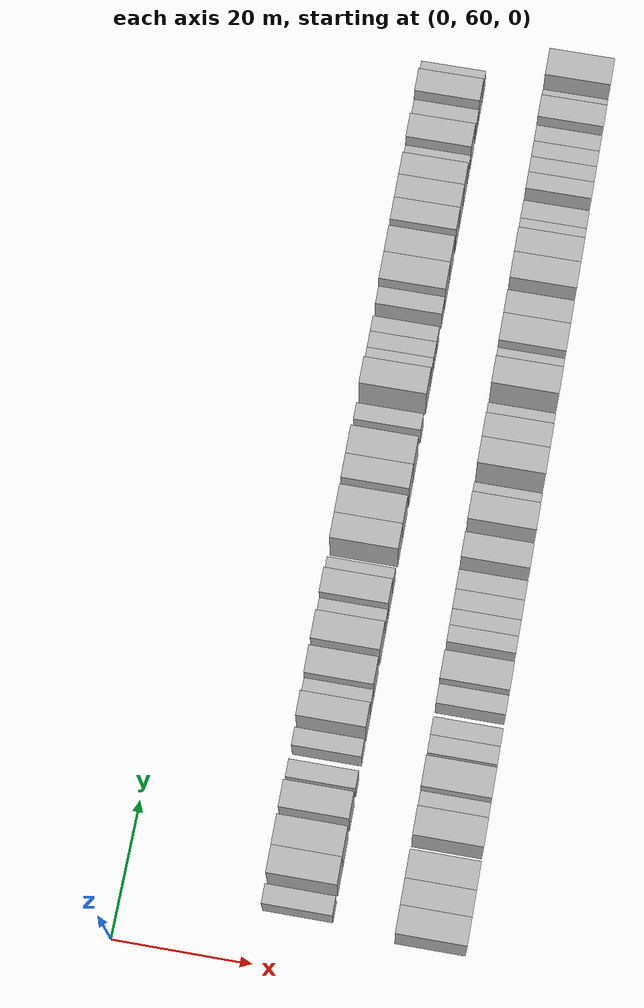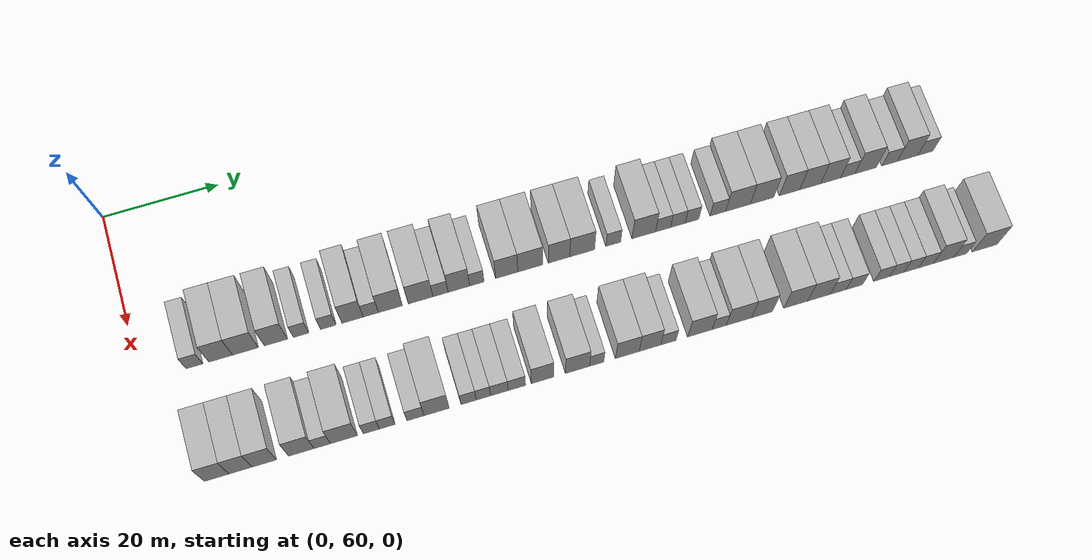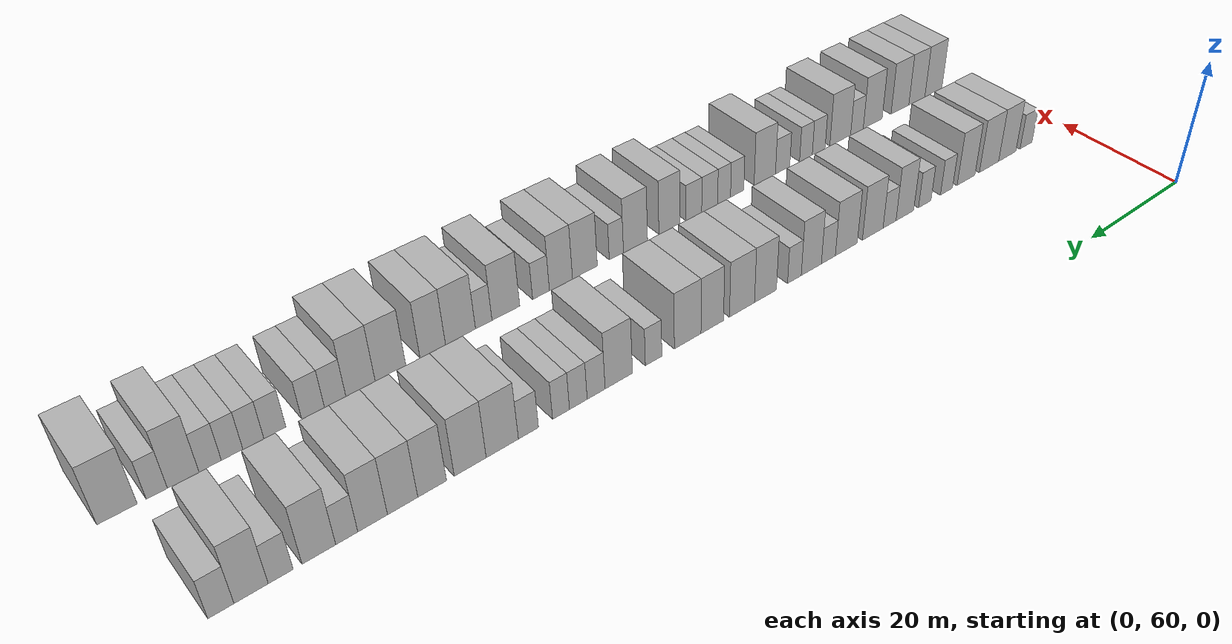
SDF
<sdf version="1.6">
 <world name="default">
  <model name="building_66">
   <static>1</static>
   <pose>25.0000 69.0635 0 0.000000 0.000000 0.000000</pose>
   <link name="link">
    <pose>0 0 3.00 0 0 0</pose>
    <collision name="collision"><geometry><box><size>10.0000 2.8092 6.0000</size></box></geometry></collision>
    <visual name="visual">
     <cast_shadows>0</cast_shadows>
     <geometry><box><size>10.0000 2.8092 6.0000</size></box></geometry>
     <material>
      <script>
       <uri>model://HANNAS_wall/materials/scripts</uri>
       <uri>model://HANNAS_wall/materials/textures</uri>
       <name>vrc/HANNAS_wall</name>
      </script>
     </material>
    </visual>
   </link>
  </model>
  <model name="building_67">
   <static>1</static>
   <pose>25.0000 73.4568 0 0.000000 0.000000 0.000000</pose>
   <link name="link">
    <pose>0 0 4.50 0 0 0</pose>
    <collision name="collision"><geometry><box><size>10.0000 3.9774 9.0000</size></box></geometry></collision>
    <visual name="visual">
     <cast_shadows>0</cast_shadows>
     <geometry><box><size>10.0000 3.9774 9.0000</size></box></geometry>
     <material>
      <script>
       <uri>model://HANNAS_wall/materials/scripts</uri>
       <uri>model://HANNAS_wall/materials/textures</uri>
       <name>vrc/HANNAS_wall</name>
      </script>
     </material>
    </visual>
   </link>
  </model>
  <model name="building_68">
   <static>1</static>
   <pose>25.0000 77.6200 0 0.000000 0.000000 0.000000</pose>
   <link name="link">
    <pose>0 0 4.50 0 0 0</pose>
    <collision name="collision"><geometry><box><size>10.0000 4.3490 9.0000</size></box></geometry></collision>
    <visual name="visual">
     <cast_shadows>0</cast_shadows>
     <geometry><box><size>10.0000 4.3490 9.0000</size></box></geometry>
     <material>
      <script>
       <uri>model://HANNAS_wall/materials/scripts</uri>
       <uri>model://HANNAS_wall/materials/textures</uri>
       <name>vrc/HANNAS_wall</name>
      </script>
     </material>
    </visual>
   </link>
  </model>
  <model name="building_69">
   <static>1</static>
   <pose>25.0000 82.7580 0 0.000000 0.000000 0.000000</pose>
   <link name="link">
    <pose>0 0 4.50 0 0 0</pose>
    <collision name="collision"><geometry><box><size>10.0000 3.9269 9.0000</size></box></geometry></collision>
    <visual name="visual">
     <cast_shadows>0</cast_shadows>
     <geometry><box><size>10.0000 3.9269 9.0000</size></box></geometry>
     <material>
      <script>
       <uri>model://HANNAS_wall/materials/scripts</uri>
       <uri>model://HANNAS_wall/materials/textures</uri>
       <name>vrc/HANNAS_wall</name>
      </script>
     </material>
    </visual>
   </link>
  </model>
  <model name="building_70">
   <static>1</static>
   <pose>25.0000 87.0237 0 0.000000 0.000000 0.000000</pose>
   <link name="link">
    <pose>0 0 3.00 0 0 0</pose>
    <collision name="collision"><geometry><box><size>10.0000 2.6046 6.0000</size></box></geometry></collision>
    <visual name="visual">
     <cast_shadows>0</cast_shadows>
     <geometry><box><size>10.0000 2.6046 6.0000</size></box></geometry>
     <material>
      <script>
       <uri>model://HANNAS_wall/materials/scripts</uri>
       <uri>model://HANNAS_wall/materials/textures</uri>
       <name>vrc/HANNAS_wall</name>
      </script>
     </material>
    </visual>
   </link>
  </model>
  <model name="building_71">
   <static>1</static>
   <pose>25.0000 91.6442 0 0.000000 0.000000 0.000000</pose>
   <link name="link">
    <pose>0 0 3.00 0 0 0</pose>
    <collision name="collision"><geometry><box><size>10.0000 2.6363 6.0000</size></box></geometry></collision>
    <visual name="visual">
     <cast_shadows>0</cast_shadows>
     <geometry><box><size>10.0000 2.6363 6.0000</size></box></geometry>
     <material>
      <script>
       <uri>model://HANNAS_wall/materials/scripts</uri>
       <uri>model://HANNAS_wall/materials/textures</uri>
       <name>vrc/HANNAS_wall</name>
      </script>
     </material>
    </visual>
   </link>
  </model>
  <model name="building_72">
   <static>1</static>
   <pose>25.0000 95.7803 0 0.000000 0.000000 0.000000</pose>
   <link name="link">
    <pose>0 0 4.50 0 0 0</pose>
    <collision name="collision"><geometry><box><size>10.0000 3.6359 9.0000</size></box></geometry></collision>
    <visual name="visual">
     <cast_shadows>0</cast_shadows>
     <geometry><box><size>10.0000 3.6359 9.0000</size></box></geometry>
     <material>
      <script>
       <uri>model://HANNAS_wall/materials/scripts</uri>
       <uri>model://HANNAS_wall/materials/textures</uri>
       <name>vrc/HANNAS_wall</name>
      </script>
     </material>
    </visual>
   </link>
  </model>
  <model name="building_73">
   <static>1</static>
   <pose>25.0000 98.9054 0 0.000000 0.000000 0.000000</pose>
   <link name="link">
    <pose>0 0 3.00 0 0 0</pose>
    <collision name="collision"><geometry><box><size>10.0000 2.6143 6.0000</size></box></geometry></collision>
    <visual name="visual">
     <cast_shadows>0</cast_shadows>
     <geometry><box><size>10.0000 2.6143 6.0000</size></box></geometry>
     <material>
      <script>
       <uri>model://HANNAS_wall/materials/scripts</uri>
       <uri>model://HANNAS_wall/materials/textures</uri>
       <name>vrc/HANNAS_wall</name>
      </script>
     </material>
    </visual>
   </link>
  </model>
  <model name="building_74">
   <static>1</static>
   <pose>25.0000 102.2557 0 0.000000 0.000000 0.000000</pose>
   <link name="link">
    <pose>0 0 4.50 0 0 0</pose>
    <collision name="collision"><geometry><box><size>10.0000 4.0864 9.0000</size></box></geometry></collision>
    <visual name="visual">
     <cast_shadows>0</cast_shadows>
     <geometry><box><size>10.0000 4.0864 9.0000</size></box></geometry>
     <material>
      <script>
       <uri>model://HANNAS_wall/materials/scripts</uri>
       <uri>model://HANNAS_wall/materials/textures</uri>
       <name>vrc/HANNAS_wall</name>
      </script>
     </material>
    </visual>
   </link>
  </model>
  <model name="building_75">
   <static>1</static>
   <pose>25.0000 107.4136 0 0.000000 0.000000 0.000000</pose>
   <link name="link">
    <pose>0 0 4.50 0 0 0</pose>
    <collision name="collision"><geometry><box><size>10.0000 4.2293 9.0000</size></box></geometry></collision>
    <visual name="visual">
     <cast_shadows>0</cast_shadows>
     <geometry><box><size>10.0000 4.2293 9.0000</size></box></geometry>
     <material>
      <script>
       <uri>model://HANNAS_wall/materials/scripts</uri>
       <uri>model://HANNAS_wall/materials/textures</uri>
       <name>vrc/HANNAS_wall</name>
      </script>
     </material>
    </visual>
   </link>
  </model>
  <model name="building_76">
   <static>1</static>
   <pose>25.0000 110.8473 0 0.000000 0.000000 0.000000</pose>
   <link name="link">
    <pose>0 0 3.00 0 0 0</pose>
    <collision name="collision"><geometry><box><size>10.0000 2.6381 6.0000</size></box></geometry></collision>
    <visual name="visual">
     <cast_shadows>0</cast_shadows>
     <geometry><box><size>10.0000 2.6381 6.0000</size></box></geometry>
     <material>
      <script>
       <uri>model://HANNAS_wall/materials/scripts</uri>
       <uri>model://HANNAS_wall/materials/textures</uri>
       <name>vrc/HANNAS_wall</name>
      </script>
     </material>
    </visual>
   </link>
  </model>
  <model name="building_77">
   <static>1</static>
   <pose>25.0000 114.0318 0 0.000000 0.000000 0.000000</pose>
   <link name="link">
    <pose>0 0 4.50 0 0 0</pose>
    <collision name="collision"><geometry><box><size>10.0000 3.7310 9.0000</size></box></geometry></collision>
    <visual name="visual">
     <cast_shadows>0</cast_shadows>
     <geometry><box><size>10.0000 3.7310 9.0000</size></box></geometry>
     <material>
      <script>
       <uri>model://HANNAS_wall/materials/scripts</uri>
       <uri>model://HANNAS_wall/materials/textures</uri>
       <name>vrc/HANNAS_wall</name>
      </script>
     </material>
    </visual>
   </link>
  </model>
  <model name="building_78">
   <static>1</static>
   <pose>25.0000 117.1428 0 0.000000 0.000000 0.000000</pose>
   <link name="link">
    <pose>0 0 3.00 0 0 0</pose>
    <collision name="collision"><geometry><box><size>10.0000 2.4910 6.0000</size></box></geometry></collision>
    <visual name="visual">
     <cast_shadows>0</cast_shadows>
     <geometry><box><size>10.0000 2.4910 6.0000</size></box></geometry>
     <material>
      <script>
       <uri>model://HANNAS_wall/materials/scripts</uri>
       <uri>model://HANNAS_wall/materials/textures</uri>
       <name>vrc/HANNAS_wall</name>
      </script>
     </material>
    </visual>
   </link>
  </model>
  <model name="building_79">
   <static>1</static>
   <pose>25.0000 122.3244 0 0.000000 0.000000 0.000000</pose>
   <link name="link">
    <pose>0 0 4.50 0 0 0</pose>
    <collision name="collision"><geometry><box><size>10.0000 3.8722 9.0000</size></box></geometry></collision>
    <visual name="visual">
     <cast_shadows>0</cast_shadows>
     <geometry><box><size>10.0000 3.8722 9.0000</size></box></geometry>
     <material>
      <script>
       <uri>model://HANNAS_wall/materials/scripts</uri>
       <uri>model://HANNAS_wall/materials/textures</uri>
       <name>vrc/HANNAS_wall</name>
      </script>
     </material>
    </visual>
   </link>
  </model>
  <model name="building_80">
   <static>1</static>
   <pose>25.0000 126.4170 0 0.000000 0.000000 0.000000</pose>
   <link name="link">
    <pose>0 0 4.50 0 0 0</pose>
    <collision name="collision"><geometry><box><size>10.0000 4.3130 9.0000</size></box></geometry></collision>
    <visual name="visual">
     <cast_shadows>0</cast_shadows>
     <geometry><box><size>10.0000 4.3130 9.0000</size></box></geometry>
     <material>
      <script>
       <uri>model://HANNAS_wall/materials/scripts</uri>
       <uri>model://HANNAS_wall/materials/textures</uri>
       <name>vrc/HANNAS_wall</name>
      </script>
     </material>
    </visual>
   </link>
  </model>
  <model name="building_81">
   <static>1</static>
   <pose>25.0000 131.4586 0 0.000000 0.000000 0.000000</pose>
   <link name="link">
    <pose>0 0 4.50 0 0 0</pose>
    <collision name="collision"><geometry><box><size>10.0000 3.7700 9.0000</size></box></geometry></collision>
    <visual name="visual">
     <cast_shadows>0</cast_shadows>
     <geometry><box><size>10.0000 3.7700 9.0000</size></box></geometry>
     <material>
      <script>
       <uri>model://HANNAS_wall/materials/scripts</uri>
       <uri>model://HANNAS_wall/materials/textures</uri>
       <name>vrc/HANNAS_wall</name>
      </script>
     </material>
    </visual>
   </link>
  </model>
  <model name="building_82">
   <static>1</static>
   <pose>25.0000 135.5124 0 0.000000 0.000000 0.000000</pose>
   <link name="link">
    <pose>0 0 4.50 0 0 0</pose>
    <collision name="collision"><geometry><box><size>10.0000 4.3376 9.0000</size></box></geometry></collision>
    <visual name="visual">
     <cast_shadows>0</cast_shadows>
     <geometry><box><size>10.0000 4.3376 9.0000</size></box></geometry>
     <material>
      <script>
       <uri>model://HANNAS_wall/materials/scripts</uri>
       <uri>model://HANNAS_wall/materials/textures</uri>
       <name>vrc/HANNAS_wall</name>
      </script>
     </material>
    </visual>
   </link>
  </model>
  <model name="building_83">
   <static>1</static>
   <pose>25.0000 140.9813 0 0.000000 0.000000 0.000000</pose>
   <link name="link">
    <pose>0 0 3.00 0 0 0</pose>
    <collision name="collision"><geometry><box><size>10.0000 2.6002 6.0000</size></box></geometry></collision>
    <visual name="visual">
     <cast_shadows>0</cast_shadows>
     <geometry><box><size>10.0000 2.6002 6.0000</size></box></geometry>
     <material>
      <script>
       <uri>model://HANNAS_wall/materials/scripts</uri>
       <uri>model://HANNAS_wall/materials/textures</uri>
       <name>vrc/HANNAS_wall</name>
      </script>
     </material>
    </visual>
   </link>
  </model>
  <model name="building_84">
   <static>1</static>
   <pose>25.0000 146.3655 0 0.000000 0.000000 0.000000</pose>
   <link name="link">
    <pose>0 0 4.50 0 0 0</pose>
    <collision name="collision"><geometry><box><size>10.0000 4.1683 9.0000</size></box></geometry></collision>
    <visual name="visual">
     <cast_shadows>0</cast_shadows>
     <geometry><box><size>10.0000 4.1683 9.0000</size></box></geometry>
     <material>
      <script>
       <uri>model://HANNAS_wall/materials/scripts</uri>
       <uri>model://HANNAS_wall/materials/textures</uri>
       <name>vrc/HANNAS_wall</name>
      </script>
     </material>
    </visual>
   </link>
  </model>
  <model name="building_85">
   <static>1</static>
   <pose>25.0000 149.7873 0 0.000000 0.000000 0.000000</pose>
   <link name="link">
    <pose>0 0 3.00 0 0 0</pose>
    <collision name="collision"><geometry><box><size>10.0000 2.6753 6.0000</size></box></geometry></collision>
    <visual name="visual">
     <cast_shadows>0</cast_shadows>
     <geometry><box><size>10.0000 2.6753 6.0000</size></box></geometry>
     <material>
      <script>
       <uri>model://HANNAS_wall/materials/scripts</uri>
       <uri>model://HANNAS_wall/materials/textures</uri>
       <name>vrc/HANNAS_wall</name>
      </script>
     </material>
    </visual>
   </link>
  </model>
  <model name="building_86">
   <static>1</static>
   <pose>25.0000 152.4203 0 0.000000 0.000000 0.000000</pose>
   <link name="link">
    <pose>0 0 3.00 0 0 0</pose>
    <collision name="collision"><geometry><box><size>10.0000 2.5905 6.0000</size></box></geometry></collision>
    <visual name="visual">
     <cast_shadows>0</cast_shadows>
     <geometry><box><size>10.0000 2.5905 6.0000</size></box></geometry>
     <material>
      <script>
       <uri>model://HANNAS_wall/materials/scripts</uri>
       <uri>model://HANNAS_wall/materials/textures</uri>
       <name>vrc/HANNAS_wall</name>
      </script>
     </material>
    </visual>
   </link>
  </model>
  <model name="building_87">
   <static>1</static>
   <pose>25.0000 154.9330 0 0.000000 0.000000 0.000000</pose>
   <link name="link">
    <pose>0 0 3.00 0 0 0</pose>
    <collision name="collision"><geometry><box><size>10.0000 2.4350 6.0000</size></box></geometry></collision>
    <visual name="visual">
     <cast_shadows>0</cast_shadows>
     <geometry><box><size>10.0000 2.4350 6.0000</size></box></geometry>
     <material>
      <script>
       <uri>model://HANNAS_wall/materials/scripts</uri>
       <uri>model://HANNAS_wall/materials/textures</uri>
       <name>vrc/HANNAS_wall</name>
      </script>
     </material>
    </visual>
   </link>
  </model>
  <model name="building_88">
   <static>1</static>
   <pose>25.0000 159.5547 0 0.000000 0.000000 0.000000</pose>
   <link name="link">
    <pose>0 0 3.00 0 0 0</pose>
    <collision name="collision"><geometry><box><size>10.0000 2.8083 6.0000</size></box></geometry></collision>
    <visual name="visual">
     <cast_shadows>0</cast_shadows>
     <geometry><box><size>10.0000 2.8083 6.0000</size></box></geometry>
     <material>
      <script>
       <uri>model://HANNAS_wall/materials/scripts</uri>
       <uri>model://HANNAS_wall/materials/textures</uri>
       <name>vrc/HANNAS_wall</name>
      </script>
     </material>
    </visual>
   </link>
  </model>
  <model name="building_89">
   <static>1</static>
   <pose>25.0000 163.1570 0 0.000000 0.000000 0.000000</pose>
   <link name="link">
    <pose>0 0 4.50 0 0 0</pose>
    <collision name="collision"><geometry><box><size>10.0000 4.3962 9.0000</size></box></geometry></collision>
    <visual name="visual">
     <cast_shadows>0</cast_shadows>
     <geometry><box><size>10.0000 4.3962 9.0000</size></box></geometry>
     <material>
      <script>
       <uri>model://HANNAS_wall/materials/scripts</uri>
       <uri>model://HANNAS_wall/materials/textures</uri>
       <name>vrc/HANNAS_wall</name>
      </script>
     </material>
    </visual>
   </link>
  </model>
  <model name="building_90">
   <static>1</static>
   <pose>25.0000 167.4752 0 0.000000 0.000000 0.000000</pose>
   <link name="link">
    <pose>0 0 4.50 0 0 0</pose>
    <collision name="collision"><geometry><box><size>10.0000 4.2403 9.0000</size></box></geometry></collision>
    <visual name="visual">
     <cast_shadows>0</cast_shadows>
     <geometry><box><size>10.0000 4.2403 9.0000</size></box></geometry>
     <material>
      <script>
       <uri>model://HANNAS_wall/materials/scripts</uri>
       <uri>model://HANNAS_wall/materials/textures</uri>
       <name>vrc/HANNAS_wall</name>
      </script>
     </material>
    </visual>
   </link>
  </model>
  <model name="building_91">
   <static>1</static>
   <pose>25.0000 172.4329 0 0.000000 0.000000 0.000000</pose>
   <link name="link">
    <pose>0 0 4.50 0 0 0</pose>
    <collision name="collision"><geometry><box><size>10.0000 3.6749 9.0000</size></box></geometry></collision>
    <visual name="visual">
     <cast_shadows>0</cast_shadows>
     <geometry><box><size>10.0000 3.6749 9.0000</size></box></geometry>
     <material>
      <script>
       <uri>model://HANNAS_wall/materials/scripts</uri>
       <uri>model://HANNAS_wall/materials/textures</uri>
       <name>vrc/HANNAS_wall</name>
      </script>
     </material>
    </visual>
   </link>
  </model>
  <model name="building_92">
   <static>1</static>
   <pose>25.0000 176.1616 0 0.000000 0.000000 0.000000</pose>
   <link name="link">
    <pose>0 0 4.50 0 0 0</pose>
    <collision name="collision"><geometry><box><size>10.0000 3.7825 9.0000</size></box></geometry></collision>
    <visual name="visual">
     <cast_shadows>0</cast_shadows>
     <geometry><box><size>10.0000 3.7825 9.0000</size></box></geometry>
     <material>
      <script>
       <uri>model://HANNAS_wall/materials/scripts</uri>
       <uri>model://HANNAS_wall/materials/textures</uri>
       <name>vrc/HANNAS_wall</name>
      </script>
     </material>
    </visual>
   </link>
  </model>
  <model name="building_93">
   <static>1</static>
   <pose>25.0000 179.8567 0 0.000000 0.000000 0.000000</pose>
   <link name="link">
    <pose>0 0 4.50 0 0 0</pose>
    <collision name="collision"><geometry><box><size>10.0000 3.6077 9.0000</size></box></geometry></collision>
    <visual name="visual">
     <cast_shadows>0</cast_shadows>
     <geometry><box><size>10.0000 3.6077 9.0000</size></box></geometry>
     <material>
      <script>
       <uri>model://HANNAS_wall/materials/scripts</uri>
       <uri>model://HANNAS_wall/materials/textures</uri>
       <name>vrc/HANNAS_wall</name>
      </script>
     </material>
    </visual>
   </link>
  </model>
  <model name="building_94">
   <static>1</static>
   <pose>25.0000 182.9745 0 0.000000 0.000000 0.000000</pose>
   <link name="link">
    <pose>0 0 3.00 0 0 0</pose>
    <collision name="collision"><geometry><box><size>10.0000 2.6279 6.0000</size></box></geometry></collision>
    <visual name="visual">
     <cast_shadows>0</cast_shadows>
     <geometry><box><size>10.0000 2.6279 6.0000</size></box></geometry>
     <material>
      <script>
       <uri>model://HANNAS_wall/materials/scripts</uri>
       <uri>model://HANNAS_wall/materials/textures</uri>
       <name>vrc/HANNAS_wall</name>
      </script>
     </material>
    </visual>
   </link>
  </model>
  <model name="building_95">
   <static>1</static>
   <pose>25.0000 186.2458 0 0.000000 0.000000 0.000000</pose>
   <link name="link">
    <pose>0 0 4.50 0 0 0</pose>
    <collision name="collision"><geometry><box><size>10.0000 3.9147 9.0000</size></box></geometry></collision>
    <visual name="visual">
     <cast_shadows>0</cast_shadows>
     <geometry><box><size>10.0000 3.9147 9.0000</size></box></geometry>
     <material>
      <script>
       <uri>model://HANNAS_wall/materials/scripts</uri>
       <uri>model://HANNAS_wall/materials/textures</uri>
       <name>vrc/HANNAS_wall</name>
      </script>
     </material>
    </visual>
   </link>
  </model>
  <model name="building_96">
   <static>1</static>
   <pose>25.0000 190.6109 0 0.000000 0.000000 0.000000</pose>
   <link name="link">
    <pose>0 0 3.00 0 0 0</pose>
    <collision name="collision"><geometry><box><size>10.0000 2.8154 6.0000</size></box></geometry></collision>
    <visual name="visual">
     <cast_shadows>0</cast_shadows>
     <geometry><box><size>10.0000 2.8154 6.0000</size></box></geometry>
     <material>
      <script>
       <uri>model://HANNAS_wall/materials/scripts</uri>
       <uri>model://HANNAS_wall/materials/textures</uri>
       <name>vrc/HANNAS_wall</name>
      </script>
     </material>
    </visual>
   </link>
  </model>
  <model name="building_97">
   <static>1</static>
   <pose>25.0000 193.8945 0 0.000000 0.000000 0.000000</pose>
   <link name="link">
    <pose>0 0 4.50 0 0 0</pose>
    <collision name="collision"><geometry><box><size>10.0000 3.7518 9.0000</size></box></geometry></collision>
    <visual name="visual">
     <cast_shadows>0</cast_shadows>
     <geometry><box><size>10.0000 3.7518 9.0000</size></box></geometry>
     <material>
      <script>
       <uri>model://HANNAS_wall/materials/scripts</uri>
       <uri>model://HANNAS_wall/materials/textures</uri>
       <name>vrc/HANNAS_wall</name>
      </script>
     </material>
    </visual>
   </link>
  </model>
  <model name="building_98">
   <static>1</static>
   <pose>25.0000 197.1750 0 0.000000 0.000000 0.000000</pose>
   <link name="link">
    <pose>0 0 3.00 0 0 0</pose>
    <collision name="collision"><geometry><box><size>10.0000 2.8093 6.0000</size></box></geometry></collision>
    <visual name="visual">
     <cast_shadows>0</cast_shadows>
     <geometry><box><size>10.0000 2.8093 6.0000</size></box></geometry>
     <material>
      <script>
       <uri>model://HANNAS_wall/materials/scripts</uri>
       <uri>model://HANNAS_wall/materials/textures</uri>
       <name>vrc/HANNAS_wall</name>
      </script>
     </material>
    </visual>
   </link>
  </model>
  <model name="building_170">
   <static>1</static>
   <pose>44.0000 68.3328 0 0.000000 0.000000 0.000000</pose>
   <link name="link">
    <pose>0 0 4.50 0 0 0</pose>
    <collision name="collision"><geometry><box><size>10.0000 4.0364 9.0000</size></box></geometry></collision>
    <visual name="visual">
     <cast_shadows>0</cast_shadows>
     <geometry><box><size>10.0000 4.0364 9.0000</size></box></geometry>
     <material>
      <script>
       <uri>model://HANNAS_wall/materials/scripts</uri>
       <uri>model://HANNAS_wall/materials/textures</uri>
       <name>vrc/HANNAS_wall</name>
      </script>
     </material>
    </visual>
   </link>
  </model>
  <model name="building_171">
   <static>1</static>
   <pose>44.0000 72.2282 0 0.000000 0.000000 0.000000</pose>
   <link name="link">
    <pose>0 0 4.50 0 0 0</pose>
    <collision name="collision"><geometry><box><size>10.0000 3.7544 9.0000</size></box></geometry></collision>
    <visual name="visual">
     <cast_shadows>0</cast_shadows>
     <geometry><box><size>10.0000 3.7544 9.0000</size></box></geometry>
     <material>
      <script>
       <uri>model://HANNAS_wall/materials/scripts</uri>
       <uri>model://HANNAS_wall/materials/textures</uri>
       <name>vrc/HANNAS_wall</name>
      </script>
     </material>
    </visual>
   </link>
  </model>
  <model name="building_172">
   <static>1</static>
   <pose>44.0000 76.1340 0 0.000000 0.000000 0.000000</pose>
   <link name="link">
    <pose>0 0 4.50 0 0 0</pose>
    <collision name="collision"><geometry><box><size>10.0000 4.0570 9.0000</size></box></geometry></collision>
    <visual name="visual">
     <cast_shadows>0</cast_shadows>
     <geometry><box><size>10.0000 4.0570 9.0000</size></box></geometry>
     <material>
      <script>
       <uri>model://HANNAS_wall/materials/scripts</uri>
       <uri>model://HANNAS_wall/materials/textures</uri>
       <name>vrc/HANNAS_wall</name>
      </script>
     </material>
    </visual>
   </link>
  </model>
  <model name="building_173">
   <static>1</static>
   <pose>44.0000 82.2555 0 0.000000 0.000000 0.000000</pose>
   <link name="link">
    <pose>0 0 4.50 0 0 0</pose>
    <collision name="collision"><geometry><box><size>10.0000 4.1860 9.0000</size></box></geometry></collision>
    <visual name="visual">
     <cast_shadows>0</cast_shadows>
     <geometry><box><size>10.0000 4.1860 9.0000</size></box></geometry>
     <material>
      <script>
       <uri>model://HANNAS_wall/materials/scripts</uri>
       <uri>model://HANNAS_wall/materials/textures</uri>
       <name>vrc/HANNAS_wall</name>
      </script>
     </material>
    </visual>
   </link>
  </model>
  <model name="building_174">
   <static>1</static>
   <pose>44.0000 85.7244 0 0.000000 0.000000 0.000000</pose>
   <link name="link">
    <pose>0 0 3.00 0 0 0</pose>
    <collision name="collision"><geometry><box><size>10.0000 2.7516 6.0000</size></box></geometry></collision>
    <visual name="visual">
     <cast_shadows>0</cast_shadows>
     <geometry><box><size>10.0000 2.7516 6.0000</size></box></geometry>
     <material>
      <script>
       <uri>model://HANNAS_wall/materials/scripts</uri>
       <uri>model://HANNAS_wall/materials/textures</uri>
       <name>vrc/HANNAS_wall</name>
      </script>
     </material>
    </visual>
   </link>
  </model>
  <model name="building_175">
   <static>1</static>
   <pose>44.0000 89.3272 0 0.000000 0.000000 0.000000</pose>
   <link name="link">
    <pose>0 0 4.50 0 0 0</pose>
    <collision name="collision"><geometry><box><size>10.0000 4.4541 9.0000</size></box></geometry></collision>
    <visual name="visual">
     <cast_shadows>0</cast_shadows>
     <geometry><box><size>10.0000 4.4541 9.0000</size></box></geometry>
     <material>
      <script>
       <uri>model://HANNAS_wall/materials/scripts</uri>
       <uri>model://HANNAS_wall/materials/textures</uri>
       <name>vrc/HANNAS_wall</name>
      </script>
     </material>
    </visual>
   </link>
  </model>
  <model name="building_176">
   <static>1</static>
   <pose>44.0000 93.8915 0 0.000000 0.000000 0.000000</pose>
   <link name="link">
    <pose>0 0 3.00 0 0 0</pose>
    <collision name="collision"><geometry><box><size>10.0000 2.6744 6.0000</size></box></geometry></collision>
    <visual name="visual">
     <cast_shadows>0</cast_shadows>
     <geometry><box><size>10.0000 2.6744 6.0000</size></box></geometry>
     <material>
      <script>
       <uri>model://HANNAS_wall/materials/scripts</uri>
       <uri>model://HANNAS_wall/materials/textures</uri>
       <name>vrc/HANNAS_wall</name>
      </script>
     </material>
    </visual>
   </link>
  </model>
  <model name="building_177">
   <static>1</static>
   <pose>44.0000 96.5376 0 0.000000 0.000000 0.000000</pose>
   <link name="link">
    <pose>0 0 3.00 0 0 0</pose>
    <collision name="collision"><geometry><box><size>10.0000 2.6178 6.0000</size></box></geometry></collision>
    <visual name="visual">
     <cast_shadows>0</cast_shadows>
     <geometry><box><size>10.0000 2.6178 6.0000</size></box></geometry>
     <material>
      <script>
       <uri>model://HANNAS_wall/materials/scripts</uri>
       <uri>model://HANNAS_wall/materials/textures</uri>
       <name>vrc/HANNAS_wall</name>
      </script>
     </material>
    </visual>
   </link>
  </model>
  <model name="building_178">
   <static>1</static>
   <pose>44.0000 101.2862 0 0.000000 0.000000 0.000000</pose>
   <link name="link">
    <pose>0 0 3.00 0 0 0</pose>
    <collision name="collision"><geometry><box><size>10.0000 2.8795 6.0000</size></box></geometry></collision>
    <visual name="visual">
     <cast_shadows>0</cast_shadows>
     <geometry><box><size>10.0000 2.8795 6.0000</size></box></geometry>
     <material>
      <script>
       <uri>model://HANNAS_wall/materials/scripts</uri>
       <uri>model://HANNAS_wall/materials/textures</uri>
       <name>vrc/HANNAS_wall</name>
      </script>
     </material>
    </visual>
   </link>
  </model>
  <model name="building_179">
   <static>1</static>
   <pose>44.0000 104.8335 0 0.000000 0.000000 0.000000</pose>
   <link name="link">
    <pose>0 0 4.50 0 0 0</pose>
    <collision name="collision"><geometry><box><size>10.0000 4.2151 9.0000</size></box></geometry></collision>
    <visual name="visual">
     <cast_shadows>0</cast_shadows>
     <geometry><box><size>10.0000 4.2151 9.0000</size></box></geometry>
     <material>
      <script>
       <uri>model://HANNAS_wall/materials/scripts</uri>
       <uri>model://HANNAS_wall/materials/textures</uri>
       <name>vrc/HANNAS_wall</name>
      </script>
     </material>
    </visual>
   </link>
  </model>
  <model name="building_180">
   <static>1</static>
   <pose>44.0000 110.2137 0 0.000000 0.000000 0.000000</pose>
   <link name="link">
    <pose>0 0 3.00 0 0 0</pose>
    <collision name="collision"><geometry><box><size>10.0000 2.5453 6.0000</size></box></geometry></collision>
    <visual name="visual">
     <cast_shadows>0</cast_shadows>
     <geometry><box><size>10.0000 2.5453 6.0000</size></box></geometry>
     <material>
      <script>
       <uri>model://HANNAS_wall/materials/scripts</uri>
       <uri>model://HANNAS_wall/materials/textures</uri>
       <name>vrc/HANNAS_wall</name>
      </script>
     </material>
    </visual>
   </link>
  </model>
  <model name="building_181">
   <static>1</static>
   <pose>44.0000 112.7024 0 0.000000 0.000000 0.000000</pose>
   <link name="link">
    <pose>0 0 3.00 0 0 0</pose>
    <collision name="collision"><geometry><box><size>10.0000 2.4321 6.0000</size></box></geometry></collision>
    <visual name="visual">
     <cast_shadows>0</cast_shadows>
     <geometry><box><size>10.0000 2.4321 6.0000</size></box></geometry>
     <material>
      <script>
       <uri>model://HANNAS_wall/materials/scripts</uri>
       <uri>model://HANNAS_wall/materials/textures</uri>
       <name>vrc/HANNAS_wall</name>
      </script>
     </material>
    </visual>
   </link>
  </model>
  <model name="building_182">
   <static>1</static>
   <pose>44.0000 115.4062 0 0.000000 0.000000 0.000000</pose>
   <link name="link">
    <pose>0 0 3.00 0 0 0</pose>
    <collision name="collision"><geometry><box><size>10.0000 2.9756 6.0000</size></box></geometry></collision>
    <visual name="visual">
     <cast_shadows>0</cast_shadows>
     <geometry><box><size>10.0000 2.9756 6.0000</size></box></geometry>
     <material>
      <script>
       <uri>model://HANNAS_wall/materials/scripts</uri>
       <uri>model://HANNAS_wall/materials/textures</uri>
       <name>vrc/HANNAS_wall</name>
      </script>
     </material>
    </visual>
   </link>
  </model>
  <model name="building_183">
   <static>1</static>
   <pose>44.0000 118.3673 0 0.000000 0.000000 0.000000</pose>
   <link name="link">
    <pose>0 0 3.00 0 0 0</pose>
    <collision name="collision"><geometry><box><size>10.0000 2.9465 6.0000</size></box></geometry></collision>
    <visual name="visual">
     <cast_shadows>0</cast_shadows>
     <geometry><box><size>10.0000 2.9465 6.0000</size></box></geometry>
     <material>
      <script>
       <uri>model://HANNAS_wall/materials/scripts</uri>
       <uri>model://HANNAS_wall/materials/textures</uri>
       <name>vrc/HANNAS_wall</name>
      </script>
     </material>
    </visual>
   </link>
  </model>
  <model name="building_184">
   <static>1</static>
   <pose>44.0000 122.7406 0 0.000000 0.000000 0.000000</pose>
   <link name="link">
    <pose>0 0 4.50 0 0 0</pose>
    <collision name="collision"><geometry><box><size>10.0000 3.8001 9.0000</size></box></geometry></collision>
    <visual name="visual">
     <cast_shadows>0</cast_shadows>
     <geometry><box><size>10.0000 3.8001 9.0000</size></box></geometry>
     <material>
      <script>
       <uri>model://HANNAS_wall/materials/scripts</uri>
       <uri>model://HANNAS_wall/materials/textures</uri>
       <name>vrc/HANNAS_wall</name>
      </script>
     </material>
    </visual>
   </link>
  </model>
  <model name="building_185">
   <static>1</static>
   <pose>44.0000 128.7251 0 0.000000 0.000000 0.000000</pose>
   <link name="link">
    <pose>0 0 4.50 0 0 0</pose>
    <collision name="collision"><geometry><box><size>10.0000 4.1690 9.0000</size></box></geometry></collision>
    <visual name="visual">
     <cast_shadows>0</cast_shadows>
     <geometry><box><size>10.0000 4.1690 9.0000</size></box></geometry>
     <material>
      <script>
       <uri>model://HANNAS_wall/materials/scripts</uri>
       <uri>model://HANNAS_wall/materials/textures</uri>
       <name>vrc/HANNAS_wall</name>
      </script>
     </material>
    </visual>
   </link>
  </model>
  <model name="building_186">
   <static>1</static>
   <pose>44.0000 132.0186 0 0.000000 0.000000 0.000000</pose>
   <link name="link">
    <pose>0 0 3.00 0 0 0</pose>
    <collision name="collision"><geometry><box><size>10.0000 2.4179 6.0000</size></box></geometry></collision>
    <visual name="visual">
     <cast_shadows>0</cast_shadows>
     <geometry><box><size>10.0000 2.4179 6.0000</size></box></geometry>
     <material>
      <script>
       <uri>model://HANNAS_wall/materials/scripts</uri>
       <uri>model://HANNAS_wall/materials/textures</uri>
       <name>vrc/HANNAS_wall</name>
      </script>
     </material>
    </visual>
   </link>
  </model>
  <model name="building_187">
   <static>1</static>
   <pose>44.0000 137.2750 0 0.000000 0.000000 0.000000</pose>
   <link name="link">
    <pose>0 0 4.50 0 0 0</pose>
    <collision name="collision"><geometry><box><size>10.0000 4.0949 9.0000</size></box></geometry></collision>
    <visual name="visual">
     <cast_shadows>0</cast_shadows>
     <geometry><box><size>10.0000 4.0949 9.0000</size></box></geometry>
     <material>
      <script>
       <uri>model://HANNAS_wall/materials/scripts</uri>
       <uri>model://HANNAS_wall/materials/textures</uri>
       <name>vrc/HANNAS_wall</name>
      </script>
     </material>
    </visual>
   </link>
  </model>
  <model name="building_188">
   <static>1</static>
   <pose>44.0000 141.1812 0 0.000000 0.000000 0.000000</pose>
   <link name="link">
    <pose>0 0 4.50 0 0 0</pose>
    <collision name="collision"><geometry><box><size>10.0000 3.7175 9.0000</size></box></geometry></collision>
    <visual name="visual">
     <cast_shadows>0</cast_shadows>
     <geometry><box><size>10.0000 3.7175 9.0000</size></box></geometry>
     <material>
      <script>
       <uri>model://HANNAS_wall/materials/scripts</uri>
       <uri>model://HANNAS_wall/materials/textures</uri>
       <name>vrc/HANNAS_wall</name>
      </script>
     </material>
    </visual>
   </link>
  </model>
  <model name="building_189">
   <static>1</static>
   <pose>44.0000 144.3713 0 0.000000 0.000000 0.000000</pose>
   <link name="link">
    <pose>0 0 3.00 0 0 0</pose>
    <collision name="collision"><geometry><box><size>10.0000 2.6627 6.0000</size></box></geometry></collision>
    <visual name="visual">
     <cast_shadows>0</cast_shadows>
     <geometry><box><size>10.0000 2.6627 6.0000</size></box></geometry>
     <material>
      <script>
       <uri>model://HANNAS_wall/materials/scripts</uri>
       <uri>model://HANNAS_wall/materials/textures</uri>
       <name>vrc/HANNAS_wall</name>
      </script>
     </material>
    </visual>
   </link>
  </model>
  <model name="building_190">
   <static>1</static>
   <pose>44.0000 149.8293 0 0.000000 0.000000 0.000000</pose>
   <link name="link">
    <pose>0 0 4.50 0 0 0</pose>
    <collision name="collision"><geometry><box><size>10.0000 4.2534 9.0000</size></box></geometry></collision>
    <visual name="visual">
     <cast_shadows>0</cast_shadows>
     <geometry><box><size>10.0000 4.2534 9.0000</size></box></geometry>
     <material>
      <script>
       <uri>model://HANNAS_wall/materials/scripts</uri>
       <uri>model://HANNAS_wall/materials/textures</uri>
       <name>vrc/HANNAS_wall</name>
      </script>
     </material>
    </visual>
   </link>
  </model>
  <model name="building_191">
   <static>1</static>
   <pose>44.0000 153.1951 0 0.000000 0.000000 0.000000</pose>
   <link name="link">
    <pose>0 0 3.00 0 0 0</pose>
    <collision name="collision"><geometry><box><size>10.0000 2.4782 6.0000</size></box></geometry></collision>
    <visual name="visual">
     <cast_shadows>0</cast_shadows>
     <geometry><box><size>10.0000 2.4782 6.0000</size></box></geometry>
     <material>
      <script>
       <uri>model://HANNAS_wall/materials/scripts</uri>
       <uri>model://HANNAS_wall/materials/textures</uri>
       <name>vrc/HANNAS_wall</name>
      </script>
     </material>
    </visual>
   </link>
  </model>
  <model name="building_192">
   <static>1</static>
   <pose>44.0000 156.6436 0 0.000000 0.000000 0.000000</pose>
   <link name="link">
    <pose>0 0 4.50 0 0 0</pose>
    <collision name="collision"><geometry><box><size>10.0000 4.4187 9.0000</size></box></geometry></collision>
    <visual name="visual">
     <cast_shadows>0</cast_shadows>
     <geometry><box><size>10.0000 4.4187 9.0000</size></box></geometry>
     <material>
      <script>
       <uri>model://HANNAS_wall/materials/scripts</uri>
       <uri>model://HANNAS_wall/materials/textures</uri>
       <name>vrc/HANNAS_wall</name>
      </script>
     </material>
    </visual>
   </link>
  </model>
  <model name="building_193">
   <static>1</static>
   <pose>44.0000 160.6810 0 0.000000 0.000000 0.000000</pose>
   <link name="link">
    <pose>0 0 4.50 0 0 0</pose>
    <collision name="collision"><geometry><box><size>10.0000 3.6562 9.0000</size></box></geometry></collision>
    <visual name="visual">
     <cast_shadows>0</cast_shadows>
     <geometry><box><size>10.0000 3.6562 9.0000</size></box></geometry>
     <material>
      <script>
       <uri>model://HANNAS_wall/materials/scripts</uri>
       <uri>model://HANNAS_wall/materials/textures</uri>
       <name>vrc/HANNAS_wall</name>
      </script>
     </material>
    </visual>
   </link>
  </model>
  <model name="building_194">
   <static>1</static>
   <pose>44.0000 166.6224 0 0.000000 0.000000 0.000000</pose>
   <link name="link">
    <pose>0 0 4.50 0 0 0</pose>
    <collision name="collision"><geometry><box><size>10.0000 4.2265 9.0000</size></box></geometry></collision>
    <visual name="visual">
     <cast_shadows>0</cast_shadows>
     <geometry><box><size>10.0000 4.2265 9.0000</size></box></geometry>
     <material>
      <script>
       <uri>model://HANNAS_wall/materials/scripts</uri>
       <uri>model://HANNAS_wall/materials/textures</uri>
       <name>vrc/HANNAS_wall</name>
      </script>
     </material>
    </visual>
   </link>
  </model>
  <model name="building_195">
   <static>1</static>
   <pose>44.0000 170.7129 0 0.000000 0.000000 0.000000</pose>
   <link name="link">
    <pose>0 0 4.50 0 0 0</pose>
    <collision name="collision"><geometry><box><size>10.0000 3.9545 9.0000</size></box></geometry></collision>
    <visual name="visual">
     <cast_shadows>0</cast_shadows>
     <geometry><box><size>10.0000 3.9545 9.0000</size></box></geometry>
     <material>
      <script>
       <uri>model://HANNAS_wall/materials/scripts</uri>
       <uri>model://HANNAS_wall/materials/textures</uri>
       <name>vrc/HANNAS_wall</name>
      </script>
     </material>
    </visual>
   </link>
  </model>
  <model name="building_196">
   <static>1</static>
   <pose>44.0000 174.1016 0 0.000000 0.000000 0.000000</pose>
   <link name="link">
    <pose>0 0 3.00 0 0 0</pose>
    <collision name="collision"><geometry><box><size>10.0000 2.8230 6.0000</size></box></geometry></collision>
    <visual name="visual">
     <cast_shadows>0</cast_shadows>
     <geometry><box><size>10.0000 2.8230 6.0000</size></box></geometry>
     <material>
      <script>
       <uri>model://HANNAS_wall/materials/scripts</uri>
       <uri>model://HANNAS_wall/materials/textures</uri>
       <name>vrc/HANNAS_wall</name>
      </script>
     </material>
    </visual>
   </link>
  </model>
  <model name="building_197">
   <static>1</static>
   <pose>44.0000 176.9767 0 0.000000 0.000000 0.000000</pose>
   <link name="link">
    <pose>0 0 3.00 0 0 0</pose>
    <collision name="collision"><geometry><box><size>10.0000 2.9273 6.0000</size></box></geometry></collision>
    <visual name="visual">
     <cast_shadows>0</cast_shadows>
     <geometry><box><size>10.0000 2.9273 6.0000</size></box></geometry>
     <material>
      <script>
       <uri>model://HANNAS_wall/materials/scripts</uri>
       <uri>model://HANNAS_wall/materials/textures</uri>
       <name>vrc/HANNAS_wall</name>
      </script>
     </material>
    </visual>
   </link>
  </model>
  <model name="building_198">
   <static>1</static>
   <pose>44.0000 181.8227 0 0.000000 0.000000 0.000000</pose>
   <link name="link">
    <pose>0 0 3.00 0 0 0</pose>
    <collision name="collision"><geometry><box><size>10.0000 2.7646 6.0000</size></box></geometry></collision>
    <visual name="visual">
     <cast_shadows>0</cast_shadows>
     <geometry><box><size>10.0000 2.7646 6.0000</size></box></geometry>
     <material>
      <script>
       <uri>model://HANNAS_wall/materials/scripts</uri>
       <uri>model://HANNAS_wall/materials/textures</uri>
       <name>vrc/HANNAS_wall</name>
      </script>
     </material>
    </visual>
   </link>
  </model>
  <model name="building_199">
   <static>1</static>
   <pose>44.0000 184.4909 0 0.000000 0.000000 0.000000</pose>
   <link name="link">
    <pose>0 0 3.00 0 0 0</pose>
    <collision name="collision"><geometry><box><size>10.0000 2.5719 6.0000</size></box></geometry></collision>
    <visual name="visual">
     <cast_shadows>0</cast_shadows>
     <geometry><box><size>10.0000 2.5719 6.0000</size></box></geometry>
     <material>
      <script>
       <uri>model://HANNAS_wall/materials/scripts</uri>
       <uri>model://HANNAS_wall/materials/textures</uri>
       <name>vrc/HANNAS_wall</name>
      </script>
     </material>
    </visual>
   </link>
  </model>
  <model name="building_200">
   <static>1</static>
   <pose>44.0000 187.0749 0 0.000000 0.000000 0.000000</pose>
   <link name="link">
    <pose>0 0 3.00 0 0 0</pose>
    <collision name="collision"><geometry><box><size>10.0000 2.5961 6.0000</size></box></geometry></collision>
    <visual name="visual">
     <cast_shadows>0</cast_shadows>
     <geometry><box><size>10.0000 2.5961 6.0000</size></box></geometry>
     <material>
      <script>
       <uri>model://HANNAS_wall/materials/scripts</uri>
       <uri>model://HANNAS_wall/materials/textures</uri>
       <name>vrc/HANNAS_wall</name>
      </script>
     </material>
    </visual>
   </link>
  </model>
  <model name="building_201">
   <static>1</static>
   <pose>44.0000 189.7017 0 0.000000 0.000000 0.000000</pose>
   <link name="link">
    <pose>0 0 3.00 0 0 0</pose>
    <collision name="collision"><geometry><box><size>10.0000 2.6574 6.0000</size></box></geometry></collision>
    <visual name="visual">
     <cast_shadows>0</cast_shadows>
     <geometry><box><size>10.0000 2.6574 6.0000</size></box></geometry>
     <material>
      <script>
       <uri>model://HANNAS_wall/materials/scripts</uri>
       <uri>model://HANNAS_wall/materials/textures</uri>
       <name>vrc/HANNAS_wall</name>
      </script>
     </material>
    </visual>
   </link>
  </model>
  <model name="building_202">
   <static>1</static>
   <pose>44.0000 192.8621 0 0.000000 0.000000 0.000000</pose>
   <link name="link">
    <pose>0 0 4.50 0 0 0</pose>
    <collision name="collision"><geometry><box><size>10.0000 3.6634 9.0000</size></box></geometry></collision>
    <visual name="visual">
     <cast_shadows>0</cast_shadows>
     <geometry><box><size>10.0000 3.6634 9.0000</size></box></geometry>
     <material>
      <script>
       <uri>model://HANNAS_wall/materials/scripts</uri>
       <uri>model://HANNAS_wall/materials/textures</uri>
       <name>vrc/HANNAS_wall</name>
      </script>
     </material>
    </visual>
   </link>
  </model>
  <model name="building_203">
   <static>1</static>
   <pose>44.0000 195.8974 0 0.000000 0.000000 0.000000</pose>
   <link name="link">
    <pose>0 0 3.00 0 0 0</pose>
    <collision name="collision"><geometry><box><size>10.0000 2.4072 6.0000</size></box></geometry></collision>
    <visual name="visual">
     <cast_shadows>0</cast_shadows>
     <geometry><box><size>10.0000 2.4072 6.0000</size></box></geometry>
     <material>
      <script>
       <uri>model://HANNAS_wall/materials/scripts</uri>
       <uri>model://HANNAS_wall/materials/textures</uri>
       <name>vrc/HANNAS_wall</name>
      </script>
     </material>
    </visual>
   </link>
  </model>
  <model name="building_204">
   <static>1</static>
   <pose>44.0000 200.3384 0 0.000000 0.000000 0.000000</pose>
   <link name="link">
    <pose>0 0 4.50 0 0 0</pose>
    <collision name="collision"><geometry><box><size>10.0000 4.4749 9.0000</size></box></geometry></collision>
    <visual name="visual">
     <cast_shadows>0</cast_shadows>
     <geometry><box><size>10.0000 4.4749 9.0000</size></box></geometry>
     <material>
      <script>
       <uri>model://HANNAS_wall/materials/scripts</uri>
       <uri>model://HANNAS_wall/materials/textures</uri>
       <name>vrc/HANNAS_wall</name>
      </script>
     </material>
    </visual>
   </link>
  </model>
 </world>
</sdf>
